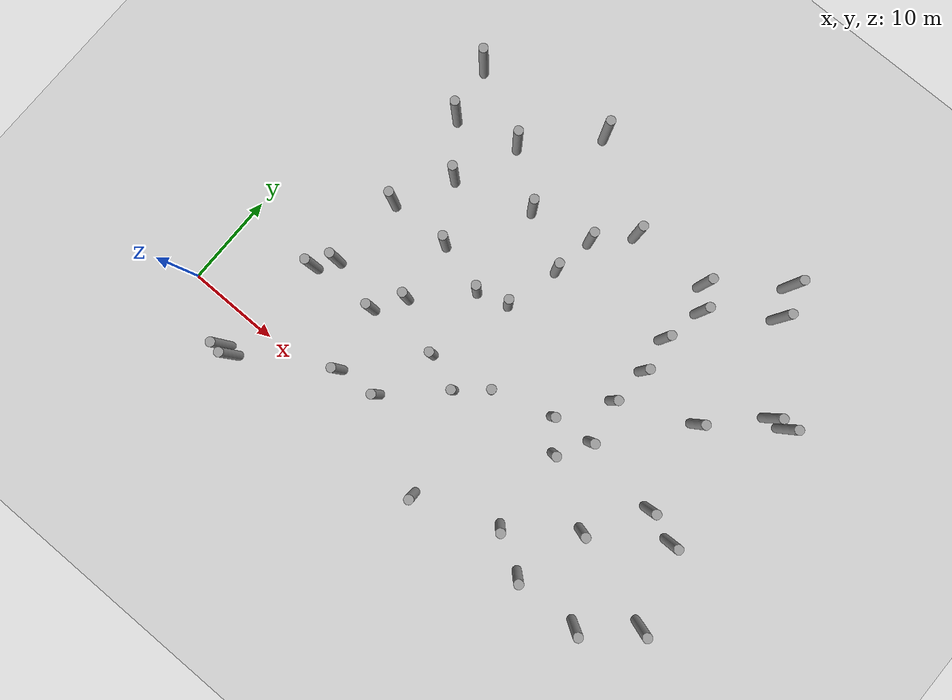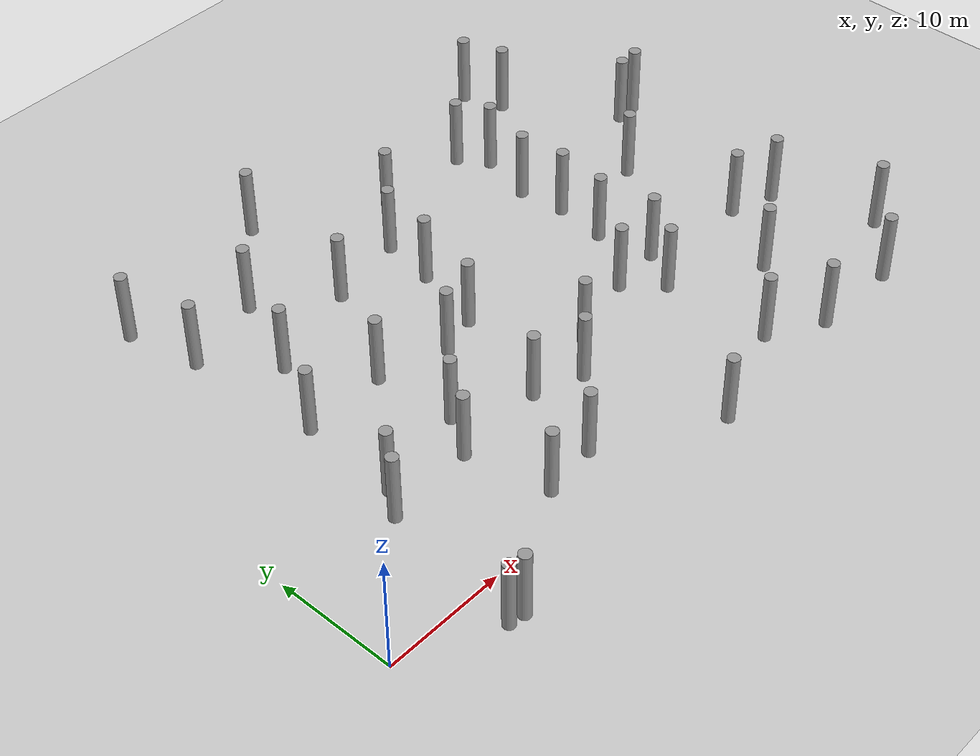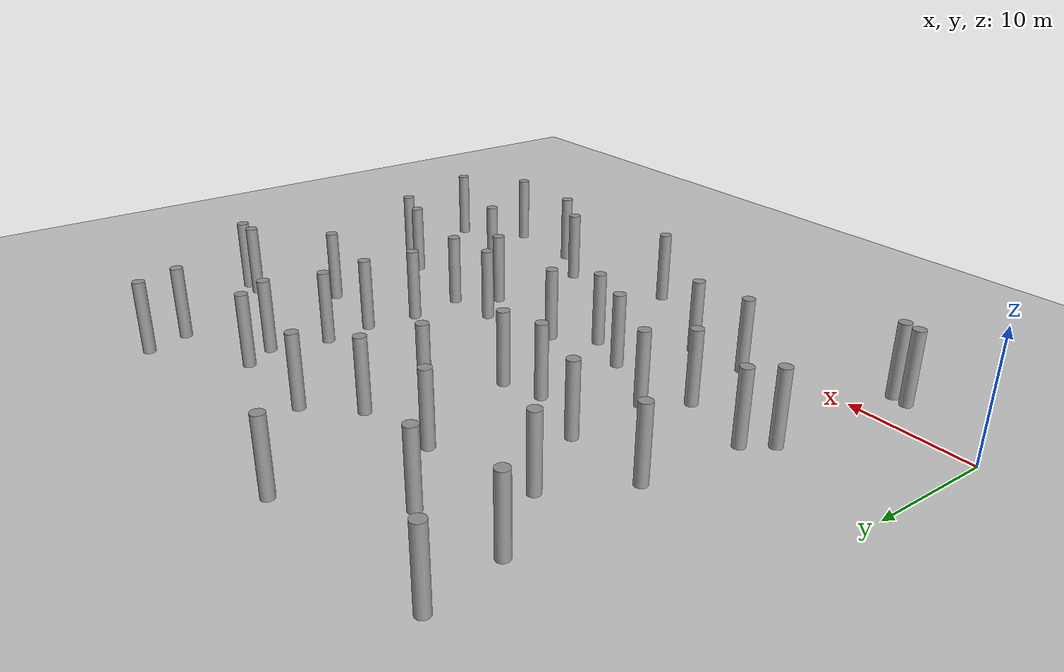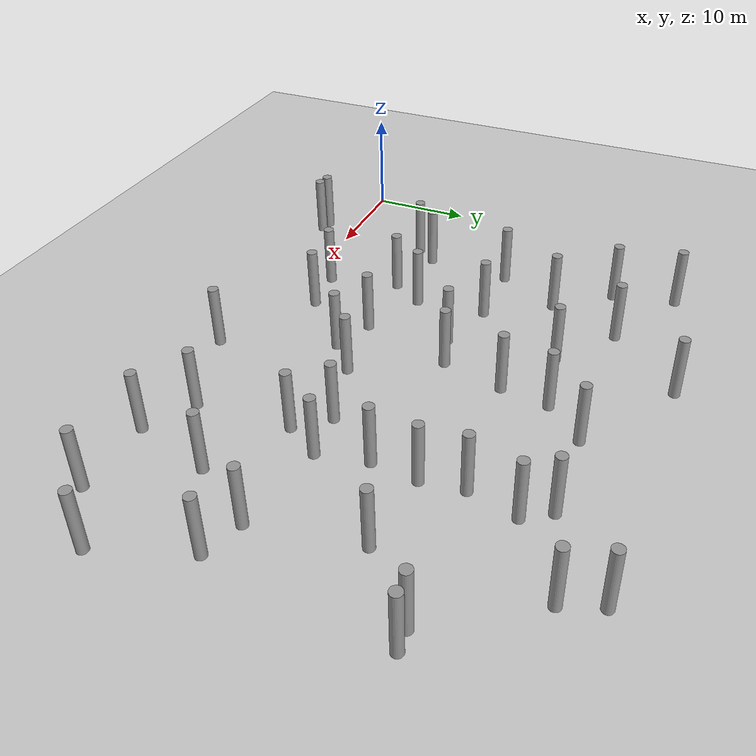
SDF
<sdf version="1.5">
 <world name="circle">
  <model name="ground">
   <static>1</static>
   <link name="link">
    <collision name="collision">
     <geometry><plane><normal>0 0 1</normal><size>100 100</size></plane></geometry>
     <surface><friction><ode><mu>100</mu><mu2>50</mu2></ode></friction></surface>
    </collision>
    <visual name="visual">
     <cast_shadows>0</cast_shadows>
     <geometry><plane><normal>0 0 1</normal><size>100 100</size></plane></geometry>
     <material>
      <script><uri>file://media/materials/scripts/gazebo.material</uri><name>Gazebo/Grey</name></script>
     </material>
    </visual>
    <velocity_decay><linear>0</linear><angular>0</angular></velocity_decay>
   </link>
  </model>
  <model name="unit_cylinder_5">
   <pose>8.83416770659 -3.51580887459 3 3e-06 4e-06 -0</pose>
   <static>1</static>
   <self_collide>1</self_collide>
   <link name="link">
    <inertial>
     <mass>1</mass>
     <inertia><ixx>0.145833</ixx><ixy>0</ixy><ixz>0</ixz><iyy>0.145833</iyy><iyz>0</iyz><izz>0.125</izz></inertia>
    </inertial>
    <collision name="collision">
     <geometry><cylinder><radius>0.5</radius><length>6</length></cylinder></geometry>
    </collision>
    <visual name="visual">
     <geometry><cylinder><radius>0.5</radius><length>6</length></cylinder></geometry>
     <material>
      <script><name>Gazebo/Grey</name><uri>file://media/materials/scripts/gazebo.material</uri></script>
     </material>
    </visual>
    <collision name="cyl_collision">
     <geometry><cylinder><radius>0.5</radius><length>6</length></cylinder></geometry>
    </collision>
    <sensor name="my_contact" type="contact">
     <contact><collision>cyl_collision</collision></contact>
     <update_rate>5</update_rate>
    </sensor>
   </link>
  </model>
  <model name="unit_cylinder_6">
   <pose>7.56302543197 -3.29659652474 3 3e-06 4e-06 -0</pose>
   <static>1</static>
   <self_collide>1</self_collide>
   <link name="link">
    <inertial>
     <mass>1</mass>
     <inertia><ixx>0.145833</ixx><ixy>0</ixy><ixz>0</ixz><iyy>0.145833</iyy><iyz>0</iyz><izz>0.125</izz></inertia>
    </inertial>
    <collision name="collision">
     <geometry><cylinder><radius>0.5</radius><length>6</length></cylinder></geometry>
    </collision>
    <visual name="visual">
     <geometry><cylinder><radius>0.5</radius><length>6</length></cylinder></geometry>
     <material>
      <script><name>Gazebo/Grey</name><uri>file://media/materials/scripts/gazebo.material</uri></script>
     </material>
    </visual>
    <collision name="cyl_collision">
     <geometry><cylinder><radius>0.5</radius><length>6</length></cylinder></geometry>
    </collision>
    <sensor name="my_contact" type="contact">
     <contact><collision>cyl_collision</collision></contact>
     <update_rate>5</update_rate>
    </sensor>
   </link>
  </model>
  <model name="unit_cylinder_7">
   <pose>9.21779882233 8.63194221244 3 3e-06 4e-06 -0</pose>
   <static>1</static>
   <self_collide>1</self_collide>
   <link name="link">
    <inertial>
     <mass>1</mass>
     <inertia><ixx>0.145833</ixx><ixy>0</ixy><ixz>0</ixz><iyy>0.145833</iyy><iyz>0</iyz><izz>0.125</izz></inertia>
    </inertial>
    <collision name="collision">
     <geometry><cylinder><radius>0.5</radius><length>6</length></cylinder></geometry>
    </collision>
    <visual name="visual">
     <geometry><cylinder><radius>0.5</radius><length>6</length></cylinder></geometry>
     <material>
      <script><name>Gazebo/Grey</name><uri>file://media/materials/scripts/gazebo.material</uri></script>
     </material>
    </visual>
    <collision name="cyl_collision">
     <geometry><cylinder><radius>0.5</radius><length>6</length></cylinder></geometry>
    </collision>
    <sensor name="my_contact" type="contact">
     <contact><collision>cyl_collision</collision></contact>
     <update_rate>5</update_rate>
    </sensor>
   </link>
  </model>
  <model name="unit_cylinder_8">
   <pose>10.6660314604 10.6326092408 3 3e-06 4e-06 -0</pose>
   <static>1</static>
   <self_collide>1</self_collide>
   <link name="link">
    <inertial>
     <mass>1</mass>
     <inertia><ixx>0.145833</ixx><ixy>0</ixy><ixz>0</ixz><iyy>0.145833</iyy><iyz>0</iyz><izz>0.125</izz></inertia>
    </inertial>
    <collision name="collision">
     <geometry><cylinder><radius>0.5</radius><length>6</length></cylinder></geometry>
    </collision>
    <visual name="visual">
     <geometry><cylinder><radius>0.5</radius><length>6</length></cylinder></geometry>
     <material>
      <script><name>Gazebo/Grey</name><uri>file://media/materials/scripts/gazebo.material</uri></script>
     </material>
    </visual>
    <collision name="cyl_collision">
     <geometry><cylinder><radius>0.5</radius><length>6</length></cylinder></geometry>
    </collision>
    <sensor name="my_contact" type="contact">
     <contact><collision>cyl_collision</collision></contact>
     <update_rate>5</update_rate>
    </sensor>
   </link>
  </model>
  <model name="unit_cylinder_9">
   <pose>11.123073649 18.9455228863 3 3e-06 4e-06 -0</pose>
   <static>1</static>
   <self_collide>1</self_collide>
   <link name="link">
    <inertial>
     <mass>1</mass>
     <inertia><ixx>0.145833</ixx><ixy>0</ixy><ixz>0</ixz><iyy>0.145833</iyy><iyz>0</iyz><izz>0.125</izz></inertia>
    </inertial>
    <collision name="collision">
     <geometry><cylinder><radius>0.5</radius><length>6</length></cylinder></geometry>
    </collision>
    <visual name="visual">
     <geometry><cylinder><radius>0.5</radius><length>6</length></cylinder></geometry>
     <material>
      <script><name>Gazebo/Grey</name><uri>file://media/materials/scripts/gazebo.material</uri></script>
     </material>
    </visual>
    <collision name="cyl_collision">
     <geometry><cylinder><radius>0.5</radius><length>6</length></cylinder></geometry>
    </collision>
    <sensor name="my_contact" type="contact">
     <contact><collision>cyl_collision</collision></contact>
     <update_rate>5</update_rate>
    </sensor>
   </link>
  </model>
  <model name="unit_cylinder_10">
   <pose>10.1845275033 30.1063696156 3 3e-06 4e-06 -0</pose>
   <static>1</static>
   <self_collide>1</self_collide>
   <link name="link">
    <inertial>
     <mass>1</mass>
     <inertia><ixx>0.145833</ixx><ixy>0</ixy><ixz>0</ixz><iyy>0.145833</iyy><iyz>0</iyz><izz>0.125</izz></inertia>
    </inertial>
    <collision name="collision">
     <geometry><cylinder><radius>0.5</radius><length>6</length></cylinder></geometry>
    </collision>
    <visual name="visual">
     <geometry><cylinder><radius>0.5</radius><length>6</length></cylinder></geometry>
     <material>
      <script><name>Gazebo/Grey</name><uri>file://media/materials/scripts/gazebo.material</uri></script>
     </material>
    </visual>
    <collision name="cyl_collision">
     <geometry><cylinder><radius>0.5</radius><length>6</length></cylinder></geometry>
    </collision>
    <sensor name="my_contact" type="contact">
     <contact><collision>cyl_collision</collision></contact>
     <update_rate>5</update_rate>
    </sensor>
   </link>
  </model>
  <model name="unit_cylinder_11">
   <pose>8.87667534142 36.0706108962 3 3e-06 4e-06 -0</pose>
   <static>1</static>
   <self_collide>1</self_collide>
   <link name="link">
    <inertial>
     <mass>1</mass>
     <inertia><ixx>0.145833</ixx><ixy>0</ixy><ixz>0</ixz><iyy>0.145833</iyy><iyz>0</iyz><izz>0.125</izz></inertia>
    </inertial>
    <collision name="collision">
     <geometry><cylinder><radius>0.5</radius><length>6</length></cylinder></geometry>
    </collision>
    <visual name="visual">
     <geometry><cylinder><radius>0.5</radius><length>6</length></cylinder></geometry>
     <material>
      <script><name>Gazebo/Grey</name><uri>file://media/materials/scripts/gazebo.material</uri></script>
     </material>
    </visual>
    <collision name="cyl_collision">
     <geometry><cylinder><radius>0.5</radius><length>6</length></cylinder></geometry>
    </collision>
    <sensor name="my_contact" type="contact">
     <contact><collision>cyl_collision</collision></contact>
     <update_rate>5</update_rate>
    </sensor>
   </link>
  </model>
  <model name="unit_cylinder_18">
   <pose>18.1074337811 2.3008003105 3 3e-06 4e-06 -0</pose>
   <static>1</static>
   <self_collide>1</self_collide>
   <link name="link">
    <inertial>
     <mass>1</mass>
     <inertia><ixx>0.145833</ixx><ixy>0</ixy><ixz>0</ixz><iyy>0.145833</iyy><iyz>0</iyz><izz>0.125</izz></inertia>
    </inertial>
    <collision name="collision">
     <geometry><cylinder><radius>0.5</radius><length>6</length></cylinder></geometry>
    </collision>
    <visual name="visual">
     <geometry><cylinder><radius>0.5</radius><length>6</length></cylinder></geometry>
     <material>
      <script><name>Gazebo/Grey</name><uri>file://media/materials/scripts/gazebo.material</uri></script>
     </material>
    </visual>
    <collision name="cyl_collision">
     <geometry><cylinder><radius>0.5</radius><length>6</length></cylinder></geometry>
    </collision>
    <sensor name="my_contact" type="contact">
     <contact><collision>cyl_collision</collision></contact>
     <update_rate>5</update_rate>
    </sensor>
   </link>
  </model>
  <model name="unit_cylinder_19">
   <pose>16.6175031208 9.12599399941 3 3e-06 4e-06 -0</pose>
   <static>1</static>
   <self_collide>1</self_collide>
   <link name="link">
    <inertial>
     <mass>1</mass>
     <inertia><ixx>0.145833</ixx><ixy>0</ixy><ixz>0</ixz><iyy>0.145833</iyy><iyz>0</iyz><izz>0.125</izz></inertia>
    </inertial>
    <collision name="collision">
     <geometry><cylinder><radius>0.5</radius><length>6</length></cylinder></geometry>
    </collision>
    <visual name="visual">
     <geometry><cylinder><radius>0.5</radius><length>6</length></cylinder></geometry>
     <material>
      <script><name>Gazebo/Grey</name><uri>file://media/materials/scripts/gazebo.material</uri></script>
     </material>
    </visual>
    <collision name="cyl_collision">
     <geometry><cylinder><radius>0.5</radius><length>6</length></cylinder></geometry>
    </collision>
    <sensor name="my_contact" type="contact">
     <contact><collision>cyl_collision</collision></contact>
     <update_rate>5</update_rate>
    </sensor>
   </link>
  </model>
  <model name="unit_cylinder_20">
   <pose>18.6151554235 12.2272240417 3 3e-06 4e-06 -0</pose>
   <static>1</static>
   <self_collide>1</self_collide>
   <link name="link">
    <inertial>
     <mass>1</mass>
     <inertia><ixx>0.145833</ixx><ixy>0</ixy><ixz>0</ixz><iyy>0.145833</iyy><iyz>0</iyz><izz>0.125</izz></inertia>
    </inertial>
    <collision name="collision">
     <geometry><cylinder><radius>0.5</radius><length>6</length></cylinder></geometry>
    </collision>
    <visual name="visual">
     <geometry><cylinder><radius>0.5</radius><length>6</length></cylinder></geometry>
     <material>
      <script><name>Gazebo/Grey</name><uri>file://media/materials/scripts/gazebo.material</uri></script>
     </material>
    </visual>
    <collision name="cyl_collision">
     <geometry><cylinder><radius>0.5</radius><length>6</length></cylinder></geometry>
    </collision>
    <sensor name="my_contact" type="contact">
     <contact><collision>cyl_collision</collision></contact>
     <update_rate>5</update_rate>
    </sensor>
   </link>
  </model>
  <model name="unit_cylinder_21">
   <pose>18.012515353 19.0028447538 3 3e-06 4e-06 -0</pose>
   <static>1</static>
   <self_collide>1</self_collide>
   <link name="link">
    <inertial>
     <mass>1</mass>
     <inertia><ixx>0.145833</ixx><ixy>0</ixy><ixz>0</ixz><iyy>0.145833</iyy><iyz>0</iyz><izz>0.125</izz></inertia>
    </inertial>
    <collision name="collision">
     <geometry><cylinder><radius>0.5</radius><length>6</length></cylinder></geometry>
    </collision>
    <visual name="visual">
     <geometry><cylinder><radius>0.5</radius><length>6</length></cylinder></geometry>
     <material>
      <script><name>Gazebo/Grey</name><uri>file://media/materials/scripts/gazebo.material</uri></script>
     </material>
    </visual>
    <collision name="cyl_collision">
     <geometry><cylinder><radius>0.5</radius><length>6</length></cylinder></geometry>
    </collision>
    <sensor name="my_contact" type="contact">
     <contact><collision>cyl_collision</collision></contact>
     <update_rate>5</update_rate>
    </sensor>
   </link>
  </model>
  <model name="unit_cylinder_22">
   <pose>14.2315893877 24.9502558088 3 3e-06 4e-06 -0</pose>
   <static>1</static>
   <self_collide>1</self_collide>
   <link name="link">
    <inertial>
     <mass>1</mass>
     <inertia><ixx>0.145833</ixx><ixy>0</ixy><ixz>0</ixz><iyy>0.145833</iyy><iyz>0</iyz><izz>0.125</izz></inertia>
    </inertial>
    <collision name="collision">
     <geometry><cylinder><radius>0.5</radius><length>6</length></cylinder></geometry>
    </collision>
    <visual name="visual">
     <geometry><cylinder><radius>0.5</radius><length>6</length></cylinder></geometry>
     <material>
      <script><name>Gazebo/Grey</name><uri>file://media/materials/scripts/gazebo.material</uri></script>
     </material>
    </visual>
    <collision name="cyl_collision">
     <geometry><cylinder><radius>0.5</radius><length>6</length></cylinder></geometry>
    </collision>
    <sensor name="my_contact" type="contact">
     <contact><collision>cyl_collision</collision></contact>
     <update_rate>5</update_rate>
    </sensor>
   </link>
  </model>
  <model name="unit_cylinder_23">
   <pose>16.9766547562 31.8201238573 3 3e-06 4e-06 -0</pose>
   <static>1</static>
   <self_collide>1</self_collide>
   <link name="link">
    <inertial>
     <mass>1</mass>
     <inertia><ixx>0.145833</ixx><ixy>0</ixy><ixz>0</ixz><iyy>0.145833</iyy><iyz>0</iyz><izz>0.125</izz></inertia>
    </inertial>
    <collision name="collision">
     <geometry><cylinder><radius>0.5</radius><length>6</length></cylinder></geometry>
    </collision>
    <visual name="visual">
     <geometry><cylinder><radius>0.5</radius><length>6</length></cylinder></geometry>
     <material>
      <script><name>Gazebo/Grey</name><uri>file://media/materials/scripts/gazebo.material</uri></script>
     </material>
    </visual>
    <collision name="cyl_collision">
     <geometry><cylinder><radius>0.5</radius><length>6</length></cylinder></geometry>
    </collision>
    <sensor name="my_contact" type="contact">
     <contact><collision>cyl_collision</collision></contact>
     <update_rate>5</update_rate>
    </sensor>
   </link>
  </model>
  <model name="unit_cylinder_30">
   <pose>22.7048124777 2.83400844069 3 3e-06 4e-06 -0</pose>
   <static>1</static>
   <self_collide>1</self_collide>
   <link name="link">
    <inertial>
     <mass>1</mass>
     <inertia><ixx>0.145833</ixx><ixy>0</ixy><ixz>0</ixz><iyy>0.145833</iyy><iyz>0</iyz><izz>0.125</izz></inertia>
    </inertial>
    <collision name="collision">
     <geometry><cylinder><radius>0.5</radius><length>6</length></cylinder></geometry>
    </collision>
    <visual name="visual">
     <geometry><cylinder><radius>0.5</radius><length>6</length></cylinder></geometry>
     <material>
      <script><name>Gazebo/Grey</name><uri>file://media/materials/scripts/gazebo.material</uri></script>
     </material>
    </visual>
    <collision name="cyl_collision">
     <geometry><cylinder><radius>0.5</radius><length>6</length></cylinder></geometry>
    </collision>
    <sensor name="my_contact" type="contact">
     <contact><collision>cyl_collision</collision></contact>
     <update_rate>5</update_rate>
    </sensor>
   </link>
  </model>
  <model name="unit_cylinder_31">
   <pose>24.3456402127 9.49454115345 3 3e-06 4e-06 -0</pose>
   <static>1</static>
   <self_collide>1</self_collide>
   <link name="link">
    <inertial>
     <mass>1</mass>
     <inertia><ixx>0.145833</ixx><ixy>0</ixy><ixz>0</ixz><iyy>0.145833</iyy><iyz>0</iyz><izz>0.125</izz></inertia>
    </inertial>
    <collision name="collision">
     <geometry><cylinder><radius>0.5</radius><length>6</length></cylinder></geometry>
    </collision>
    <visual name="visual">
     <geometry><cylinder><radius>0.5</radius><length>6</length></cylinder></geometry>
     <material>
      <script><name>Gazebo/Grey</name><uri>file://media/materials/scripts/gazebo.material</uri></script>
     </material>
    </visual>
    <collision name="cyl_collision">
     <geometry><cylinder><radius>0.5</radius><length>6</length></cylinder></geometry>
    </collision>
    <sensor name="my_contact" type="contact">
     <contact><collision>cyl_collision</collision></contact>
     <update_rate>5</update_rate>
    </sensor>
   </link>
  </model>
  <model name="unit_cylinder_32">
   <pose>23.6487459374 17.3425965004 3 3e-06 4e-06 -0</pose>
   <static>1</static>
   <self_collide>1</self_collide>
   <link name="link">
    <inertial>
     <mass>1</mass>
     <inertia><ixx>0.145833</ixx><ixy>0</ixy><ixz>0</ixz><iyy>0.145833</iyy><iyz>0</iyz><izz>0.125</izz></inertia>
    </inertial>
    <collision name="collision">
     <geometry><cylinder><radius>0.5</radius><length>6</length></cylinder></geometry>
    </collision>
    <visual name="visual">
     <geometry><cylinder><radius>0.5</radius><length>6</length></cylinder></geometry>
     <material>
      <script><name>Gazebo/Grey</name><uri>file://media/materials/scripts/gazebo.material</uri></script>
     </material>
    </visual>
    <collision name="cyl_collision">
     <geometry><cylinder><radius>0.5</radius><length>6</length></cylinder></geometry>
    </collision>
    <sensor name="my_contact" type="contact">
     <contact><collision>cyl_collision</collision></contact>
     <update_rate>5</update_rate>
    </sensor>
   </link>
  </model>
  <model name="unit_cylinder_33">
   <pose>26.982643623 18.3394458128 3 3e-06 4e-06 -0</pose>
   <static>1</static>
   <self_collide>1</self_collide>
   <link name="link">
    <inertial>
     <mass>1</mass>
     <inertia><ixx>0.145833</ixx><ixy>0</ixy><ixz>0</ixz><iyy>0.145833</iyy><iyz>0</iyz><izz>0.125</izz></inertia>
    </inertial>
    <collision name="collision">
     <geometry><cylinder><radius>0.5</radius><length>6</length></cylinder></geometry>
    </collision>
    <visual name="visual">
     <geometry><cylinder><radius>0.5</radius><length>6</length></cylinder></geometry>
     <material>
      <script><name>Gazebo/Grey</name><uri>file://media/materials/scripts/gazebo.material</uri></script>
     </material>
    </visual>
    <collision name="cyl_collision">
     <geometry><cylinder><radius>0.5</radius><length>6</length></cylinder></geometry>
    </collision>
    <sensor name="my_contact" type="contact">
     <contact><collision>cyl_collision</collision></contact>
     <update_rate>5</update_rate>
    </sensor>
   </link>
  </model>
  <model name="unit_cylinder_34">
   <pose>22.5629372202 27.5258032827 3 3e-06 4e-06 -0</pose>
   <static>1</static>
   <self_collide>1</self_collide>
   <link name="link">
    <inertial>
     <mass>1</mass>
     <inertia><ixx>0.145833</ixx><ixy>0</ixy><ixz>0</ixz><iyy>0.145833</iyy><iyz>0</iyz><izz>0.125</izz></inertia>
    </inertial>
    <collision name="collision">
     <geometry><cylinder><radius>0.5</radius><length>6</length></cylinder></geometry>
    </collision>
    <visual name="visual">
     <geometry><cylinder><radius>0.5</radius><length>6</length></cylinder></geometry>
     <material>
      <script><name>Gazebo/Grey</name><uri>file://media/materials/scripts/gazebo.material</uri></script>
     </material>
    </visual>
    <collision name="cyl_collision">
     <geometry><cylinder><radius>0.5</radius><length>6</length></cylinder></geometry>
    </collision>
    <sensor name="my_contact" type="contact">
     <contact><collision>cyl_collision</collision></contact>
     <update_rate>5</update_rate>
    </sensor>
   </link>
  </model>
  <model name="unit_cylinder_35">
   <pose>23.32483773 38.4749092303 3 3e-06 4e-06 -0</pose>
   <static>1</static>
   <self_collide>1</self_collide>
   <link name="link">
    <inertial>
     <mass>1</mass>
     <inertia><ixx>0.145833</ixx><ixy>0</ixy><ixz>0</ixz><iyy>0.145833</iyy><iyz>0</iyz><izz>0.125</izz></inertia>
    </inertial>
    <collision name="collision">
     <geometry><cylinder><radius>0.5</radius><length>6</length></cylinder></geometry>
    </collision>
    <visual name="visual">
     <geometry><cylinder><radius>0.5</radius><length>6</length></cylinder></geometry>
     <material>
      <script><name>Gazebo/Grey</name><uri>file://media/materials/scripts/gazebo.material</uri></script>
     </material>
    </visual>
    <collision name="cyl_collision">
     <geometry><cylinder><radius>0.5</radius><length>6</length></cylinder></geometry>
    </collision>
    <sensor name="my_contact" type="contact">
     <contact><collision>cyl_collision</collision></contact>
     <update_rate>5</update_rate>
    </sensor>
   </link>
  </model>
  <model name="unit_cylinder_42">
   <pose>31.9394512906 -2.41351626477 3 3e-06 4e-06 -0</pose>
   <static>1</static>
   <self_collide>1</self_collide>
   <link name="link">
    <inertial>
     <mass>1</mass>
     <inertia><ixx>0.145833</ixx><ixy>0</ixy><ixz>0</ixz><iyy>0.145833</iyy><iyz>0</iyz><izz>0.125</izz></inertia>
    </inertial>
    <collision name="collision">
     <geometry><cylinder><radius>0.5</radius><length>6</length></cylinder></geometry>
    </collision>
    <visual name="visual">
     <geometry><cylinder><radius>0.5</radius><length>6</length></cylinder></geometry>
     <material>
      <script><name>Gazebo/Grey</name><uri>file://media/materials/scripts/gazebo.material</uri></script>
     </material>
    </visual>
    <collision name="cyl_collision">
     <geometry><cylinder><radius>0.5</radius><length>6</length></cylinder></geometry>
    </collision>
    <sensor name="my_contact" type="contact">
     <contact><collision>cyl_collision</collision></contact>
     <update_rate>5</update_rate>
    </sensor>
   </link>
  </model>
  <model name="unit_cylinder_43">
   <pose>28.2961669027 8.06749953785 3 3e-06 4e-06 -0</pose>
   <static>1</static>
   <self_collide>1</self_collide>
   <link name="link">
    <inertial>
     <mass>1</mass>
     <inertia><ixx>0.145833</ixx><ixy>0</ixy><ixz>0</ixz><iyy>0.145833</iyy><iyz>0</iyz><izz>0.125</izz></inertia>
    </inertial>
    <collision name="collision">
     <geometry><cylinder><radius>0.5</radius><length>6</length></cylinder></geometry>
    </collision>
    <visual name="visual">
     <geometry><cylinder><radius>0.5</radius><length>6</length></cylinder></geometry>
     <material>
      <script><name>Gazebo/Grey</name><uri>file://media/materials/scripts/gazebo.material</uri></script>
     </material>
    </visual>
    <collision name="cyl_collision">
     <geometry><cylinder><radius>0.5</radius><length>6</length></cylinder></geometry>
    </collision>
    <sensor name="my_contact" type="contact">
     <contact><collision>cyl_collision</collision></contact>
     <update_rate>5</update_rate>
    </sensor>
   </link>
  </model>
  <model name="unit_cylinder_44">
   <pose>31.2671998302 10.5975532691 3 3e-06 4e-06 -0</pose>
   <static>1</static>
   <self_collide>1</self_collide>
   <link name="link">
    <inertial>
     <mass>1</mass>
     <inertia><ixx>0.145833</ixx><ixy>0</ixy><ixz>0</ixz><iyy>0.145833</iyy><iyz>0</iyz><izz>0.125</izz></inertia>
    </inertial>
    <collision name="collision">
     <geometry><cylinder><radius>0.5</radius><length>6</length></cylinder></geometry>
    </collision>
    <visual name="visual">
     <geometry><cylinder><radius>0.5</radius><length>6</length></cylinder></geometry>
     <material>
      <script><name>Gazebo/Grey</name><uri>file://media/materials/scripts/gazebo.material</uri></script>
     </material>
    </visual>
    <collision name="cyl_collision">
     <geometry><cylinder><radius>0.5</radius><length>6</length></cylinder></geometry>
    </collision>
    <sensor name="my_contact" type="contact">
     <contact><collision>cyl_collision</collision></contact>
     <update_rate>5</update_rate>
    </sensor>
   </link>
  </model>
  <model name="unit_cylinder_45">
   <pose>28.483780144 24.2244516977 3 3e-06 4e-06 -0</pose>
   <static>1</static>
   <self_collide>1</self_collide>
   <link name="link">
    <inertial>
     <mass>1</mass>
     <inertia><ixx>0.145833</ixx><ixy>0</ixy><ixz>0</ixz><iyy>0.145833</iyy><iyz>0</iyz><izz>0.125</izz></inertia>
    </inertial>
    <collision name="collision">
     <geometry><cylinder><radius>0.5</radius><length>6</length></cylinder></geometry>
    </collision>
    <visual name="visual">
     <geometry><cylinder><radius>0.5</radius><length>6</length></cylinder></geometry>
     <material>
      <script><name>Gazebo/Grey</name><uri>file://media/materials/scripts/gazebo.material</uri></script>
     </material>
    </visual>
    <collision name="cyl_collision">
     <geometry><cylinder><radius>0.5</radius><length>6</length></cylinder></geometry>
    </collision>
    <sensor name="my_contact" type="contact">
     <contact><collision>cyl_collision</collision></contact>
     <update_rate>5</update_rate>
    </sensor>
   </link>
  </model>
  <model name="unit_cylinder_46">
   <pose>29.1691113375 28.770315287 3 3e-06 4e-06 -0</pose>
   <static>1</static>
   <self_collide>1</self_collide>
   <link name="link">
    <inertial>
     <mass>1</mass>
     <inertia><ixx>0.145833</ixx><ixy>0</ixy><ixz>0</ixz><iyy>0.145833</iyy><iyz>0</iyz><izz>0.125</izz></inertia>
    </inertial>
    <collision name="collision">
     <geometry><cylinder><radius>0.5</radius><length>6</length></cylinder></geometry>
    </collision>
    <visual name="visual">
     <geometry><cylinder><radius>0.5</radius><length>6</length></cylinder></geometry>
     <material>
      <script><name>Gazebo/Grey</name><uri>file://media/materials/scripts/gazebo.material</uri></script>
     </material>
    </visual>
    <collision name="cyl_collision">
     <geometry><cylinder><radius>0.5</radius><length>6</length></cylinder></geometry>
    </collision>
    <sensor name="my_contact" type="contact">
     <contact><collision>cyl_collision</collision></contact>
     <update_rate>5</update_rate>
    </sensor>
   </link>
  </model>
  <model name="unit_cylinder_47">
   <pose>32.448815474 32.3084010051 3 3e-06 4e-06 -0</pose>
   <static>1</static>
   <self_collide>1</self_collide>
   <link name="link">
    <inertial>
     <mass>1</mass>
     <inertia><ixx>0.145833</ixx><ixy>0</ixy><ixz>0</ixz><iyy>0.145833</iyy><iyz>0</iyz><izz>0.125</izz></inertia>
    </inertial>
    <collision name="collision">
     <geometry><cylinder><radius>0.5</radius><length>6</length></cylinder></geometry>
    </collision>
    <visual name="visual">
     <geometry><cylinder><radius>0.5</radius><length>6</length></cylinder></geometry>
     <material>
      <script><name>Gazebo/Grey</name><uri>file://media/materials/scripts/gazebo.material</uri></script>
     </material>
    </visual>
    <collision name="cyl_collision">
     <geometry><cylinder><radius>0.5</radius><length>6</length></cylinder></geometry>
    </collision>
    <sensor name="my_contact" type="contact">
     <contact><collision>cyl_collision</collision></contact>
     <update_rate>5</update_rate>
    </sensor>
   </link>
  </model>
  <model name="unit_cylinder_54">
   <pose>40.6063096722 0.771646943641 3 3e-06 4e-06 -0</pose>
   <static>1</static>
   <self_collide>1</self_collide>
   <link name="link">
    <inertial>
     <mass>1</mass>
     <inertia><ixx>0.145833</ixx><ixy>0</ixy><ixz>0</ixz><iyy>0.145833</iyy><iyz>0</iyz><izz>0.125</izz></inertia>
    </inertial>
    <collision name="collision">
     <geometry><cylinder><radius>0.5</radius><length>6</length></cylinder></geometry>
    </collision>
    <visual name="visual">
     <geometry><cylinder><radius>0.5</radius><length>6</length></cylinder></geometry>
     <material>
      <script><name>Gazebo/Grey</name><uri>file://media/materials/scripts/gazebo.material</uri></script>
     </material>
    </visual>
    <collision name="cyl_collision">
     <geometry><cylinder><radius>0.5</radius><length>6</length></cylinder></geometry>
    </collision>
    <sensor name="my_contact" type="contact">
     <contact><collision>cyl_collision</collision></contact>
     <update_rate>5</update_rate>
    </sensor>
   </link>
  </model>
  <model name="unit_cylinder_55">
   <pose>40.1062640561 9.66793157525 3 3e-06 4e-06 -0</pose>
   <static>1</static>
   <self_collide>1</self_collide>
   <link name="link">
    <inertial>
     <mass>1</mass>
     <inertia><ixx>0.145833</ixx><ixy>0</ixy><ixz>0</ixz><iyy>0.145833</iyy><iyz>0</iyz><izz>0.125</izz></inertia>
    </inertial>
    <collision name="collision">
     <geometry><cylinder><radius>0.5</radius><length>6</length></cylinder></geometry>
    </collision>
    <visual name="visual">
     <geometry><cylinder><radius>0.5</radius><length>6</length></cylinder></geometry>
     <material>
      <script><name>Gazebo/Grey</name><uri>file://media/materials/scripts/gazebo.material</uri></script>
     </material>
    </visual>
    <collision name="cyl_collision">
     <geometry><cylinder><radius>0.5</radius><length>6</length></cylinder></geometry>
    </collision>
    <sensor name="my_contact" type="contact">
     <contact><collision>cyl_collision</collision></contact>
     <update_rate>5</update_rate>
    </sensor>
   </link>
  </model>
  <model name="unit_cylinder_56">
   <pose>37.6888003922 12.4777077231 3 3e-06 4e-06 -0</pose>
   <static>1</static>
   <self_collide>1</self_collide>
   <link name="link">
    <inertial>
     <mass>1</mass>
     <inertia><ixx>0.145833</ixx><ixy>0</ixy><ixz>0</ixz><iyy>0.145833</iyy><iyz>0</iyz><izz>0.125</izz></inertia>
    </inertial>
    <collision name="collision">
     <geometry><cylinder><radius>0.5</radius><length>6</length></cylinder></geometry>
    </collision>
    <visual name="visual">
     <geometry><cylinder><radius>0.5</radius><length>6</length></cylinder></geometry>
     <material>
      <script><name>Gazebo/Grey</name><uri>file://media/materials/scripts/gazebo.material</uri></script>
     </material>
    </visual>
    <collision name="cyl_collision">
     <geometry><cylinder><radius>0.5</radius><length>6</length></cylinder></geometry>
    </collision>
    <sensor name="my_contact" type="contact">
     <contact><collision>cyl_collision</collision></contact>
     <update_rate>5</update_rate>
    </sensor>
   </link>
  </model>
  <model name="unit_cylinder_57">
   <pose>41.2859097031 17.5839858984 3 3e-06 4e-06 -0</pose>
   <static>1</static>
   <self_collide>1</self_collide>
   <link name="link">
    <inertial>
     <mass>1</mass>
     <inertia><ixx>0.145833</ixx><ixy>0</ixy><ixz>0</ixz><iyy>0.145833</iyy><iyz>0</iyz><izz>0.125</izz></inertia>
    </inertial>
    <collision name="collision">
     <geometry><cylinder><radius>0.5</radius><length>6</length></cylinder></geometry>
    </collision>
    <visual name="visual">
     <geometry><cylinder><radius>0.5</radius><length>6</length></cylinder></geometry>
     <material>
      <script><name>Gazebo/Grey</name><uri>file://media/materials/scripts/gazebo.material</uri></script>
     </material>
    </visual>
    <collision name="cyl_collision">
     <geometry><cylinder><radius>0.5</radius><length>6</length></cylinder></geometry>
    </collision>
    <sensor name="my_contact" type="contact">
     <contact><collision>cyl_collision</collision></contact>
     <update_rate>5</update_rate>
    </sensor>
   </link>
  </model>
  <model name="unit_cylinder_58">
   <pose>41.2668159355 25.7203582716 3 3e-06 4e-06 -0</pose>
   <static>1</static>
   <self_collide>1</self_collide>
   <link name="link">
    <inertial>
     <mass>1</mass>
     <inertia><ixx>0.145833</ixx><ixy>0</ixy><ixz>0</ixz><iyy>0.145833</iyy><iyz>0</iyz><izz>0.125</izz></inertia>
    </inertial>
    <collision name="collision">
     <geometry><cylinder><radius>0.5</radius><length>6</length></cylinder></geometry>
    </collision>
    <visual name="visual">
     <geometry><cylinder><radius>0.5</radius><length>6</length></cylinder></geometry>
     <material>
      <script><name>Gazebo/Grey</name><uri>file://media/materials/scripts/gazebo.material</uri></script>
     </material>
    </visual>
    <collision name="cyl_collision">
     <geometry><cylinder><radius>0.5</radius><length>6</length></cylinder></geometry>
    </collision>
    <sensor name="my_contact" type="contact">
     <contact><collision>cyl_collision</collision></contact>
     <update_rate>5</update_rate>
    </sensor>
   </link>
  </model>
  <model name="unit_cylinder_59">
   <pose>40.8961990471 32.6171346375 3 3e-06 4e-06 -0</pose>
   <static>1</static>
   <self_collide>1</self_collide>
   <link name="link">
    <inertial>
     <mass>1</mass>
     <inertia><ixx>0.145833</ixx><ixy>0</ixy><ixz>0</ixz><iyy>0.145833</iyy><iyz>0</iyz><izz>0.125</izz></inertia>
    </inertial>
    <collision name="collision">
     <geometry><cylinder><radius>0.5</radius><length>6</length></cylinder></geometry>
    </collision>
    <visual name="visual">
     <geometry><cylinder><radius>0.5</radius><length>6</length></cylinder></geometry>
     <material>
      <script><name>Gazebo/Grey</name><uri>file://media/materials/scripts/gazebo.material</uri></script>
     </material>
    </visual>
    <collision name="cyl_collision">
     <geometry><cylinder><radius>0.5</radius><length>6</length></cylinder></geometry>
    </collision>
    <sensor name="my_contact" type="contact">
     <contact><collision>cyl_collision</collision></contact>
     <update_rate>5</update_rate>
    </sensor>
   </link>
  </model>
  <model name="unit_cylinder_66">
   <pose>44.9197214891 -1.74256208292 3 3e-06 4e-06 -0</pose>
   <static>1</static>
   <self_collide>1</self_collide>
   <link name="link">
    <inertial>
     <mass>1</mass>
     <inertia><ixx>0.145833</ixx><ixy>0</ixy><ixz>0</ixz><iyy>0.145833</iyy><iyz>0</iyz><izz>0.125</izz></inertia>
    </inertial>
    <collision name="collision">
     <geometry><cylinder><radius>0.5</radius><length>6</length></cylinder></geometry>
    </collision>
    <visual name="visual">
     <geometry><cylinder><radius>0.5</radius><length>6</length></cylinder></geometry>
     <material>
      <script><name>Gazebo/Grey</name><uri>file://media/materials/scripts/gazebo.material</uri></script>
     </material>
    </visual>
    <collision name="cyl_collision">
     <geometry><cylinder><radius>0.5</radius><length>6</length></cylinder></geometry>
    </collision>
    <sensor name="my_contact" type="contact">
     <contact><collision>cyl_collision</collision></contact>
     <update_rate>5</update_rate>
    </sensor>
   </link>
  </model>
  <model name="unit_cylinder_67">
   <pose>47.0342096891 5.60546377187 3 3e-06 4e-06 -0</pose>
   <static>1</static>
   <self_collide>1</self_collide>
   <link name="link">
    <inertial>
     <mass>1</mass>
     <inertia><ixx>0.145833</ixx><ixy>0</ixy><ixz>0</ixz><iyy>0.145833</iyy><iyz>0</iyz><izz>0.125</izz></inertia>
    </inertial>
    <collision name="collision">
     <geometry><cylinder><radius>0.5</radius><length>6</length></cylinder></geometry>
    </collision>
    <visual name="visual">
     <geometry><cylinder><radius>0.5</radius><length>6</length></cylinder></geometry>
     <material>
      <script><name>Gazebo/Grey</name><uri>file://media/materials/scripts/gazebo.material</uri></script>
     </material>
    </visual>
    <collision name="cyl_collision">
     <geometry><cylinder><radius>0.5</radius><length>6</length></cylinder></geometry>
    </collision>
    <sensor name="my_contact" type="contact">
     <contact><collision>cyl_collision</collision></contact>
     <update_rate>5</update_rate>
    </sensor>
   </link>
  </model>
  <model name="unit_cylinder_68">
   <pose>42.1555837049 12.9474328069 3 3e-06 4e-06 -0</pose>
   <static>1</static>
   <self_collide>1</self_collide>
   <link name="link">
    <inertial>
     <mass>1</mass>
     <inertia><ixx>0.145833</ixx><ixy>0</ixy><ixz>0</ixz><iyy>0.145833</iyy><iyz>0</iyz><izz>0.125</izz></inertia>
    </inertial>
    <collision name="collision">
     <geometry><cylinder><radius>0.5</radius><length>6</length></cylinder></geometry>
    </collision>
    <visual name="visual">
     <geometry><cylinder><radius>0.5</radius><length>6</length></cylinder></geometry>
     <material>
      <script><name>Gazebo/Grey</name><uri>file://media/materials/scripts/gazebo.material</uri></script>
     </material>
    </visual>
    <collision name="cyl_collision">
     <geometry><cylinder><radius>0.5</radius><length>6</length></cylinder></geometry>
    </collision>
    <sensor name="my_contact" type="contact">
     <contact><collision>cyl_collision</collision></contact>
     <update_rate>5</update_rate>
    </sensor>
   </link>
  </model>
  <model name="unit_cylinder_69">
   <pose>41.7216422982 21.8516951436 3 3e-06 4e-06 -0</pose>
   <static>1</static>
   <self_collide>1</self_collide>
   <link name="link">
    <inertial>
     <mass>1</mass>
     <inertia><ixx>0.145833</ixx><ixy>0</ixy><ixz>0</ixz><iyy>0.145833</iyy><iyz>0</iyz><izz>0.125</izz></inertia>
    </inertial>
    <collision name="collision">
     <geometry><cylinder><radius>0.5</radius><length>6</length></cylinder></geometry>
    </collision>
    <visual name="visual">
     <geometry><cylinder><radius>0.5</radius><length>6</length></cylinder></geometry>
     <material>
      <script><name>Gazebo/Grey</name><uri>file://media/materials/scripts/gazebo.material</uri></script>
     </material>
    </visual>
    <collision name="cyl_collision">
     <geometry><cylinder><radius>0.5</radius><length>6</length></cylinder></geometry>
    </collision>
    <sensor name="my_contact" type="contact">
     <contact><collision>cyl_collision</collision></contact>
     <update_rate>5</update_rate>
    </sensor>
   </link>
  </model>
  <model name="unit_cylinder_70">
   <pose>42.4208545385 30.2398321597 3 3e-06 4e-06 -0</pose>
   <static>1</static>
   <self_collide>1</self_collide>
   <link name="link">
    <inertial>
     <mass>1</mass>
     <inertia><ixx>0.145833</ixx><ixy>0</ixy><ixz>0</ixz><iyy>0.145833</iyy><iyz>0</iyz><izz>0.125</izz></inertia>
    </inertial>
    <collision name="collision">
     <geometry><cylinder><radius>0.5</radius><length>6</length></cylinder></geometry>
    </collision>
    <visual name="visual">
     <geometry><cylinder><radius>0.5</radius><length>6</length></cylinder></geometry>
     <material>
      <script><name>Gazebo/Grey</name><uri>file://media/materials/scripts/gazebo.material</uri></script>
     </material>
    </visual>
    <collision name="cyl_collision">
     <geometry><cylinder><radius>0.5</radius><length>6</length></cylinder></geometry>
    </collision>
    <sensor name="my_contact" type="contact">
     <contact><collision>cyl_collision</collision></contact>
     <update_rate>5</update_rate>
    </sensor>
   </link>
  </model>
  <model name="unit_cylinder_71">
   <pose>47.7926249251 38.1888885827 3 3e-06 4e-06 -0</pose>
   <static>1</static>
   <self_collide>1</self_collide>
   <link name="link">
    <inertial>
     <mass>1</mass>
     <inertia><ixx>0.145833</ixx><ixy>0</ixy><ixz>0</ixz><iyy>0.145833</iyy><iyz>0</iyz><izz>0.125</izz></inertia>
    </inertial>
    <collision name="collision">
     <geometry><cylinder><radius>0.5</radius><length>6</length></cylinder></geometry>
    </collision>
    <visual name="visual">
     <geometry><cylinder><radius>0.5</radius><length>6</length></cylinder></geometry>
     <material>
      <script><name>Gazebo/Grey</name><uri>file://media/materials/scripts/gazebo.material</uri></script>
     </material>
    </visual>
    <collision name="cyl_collision">
     <geometry><cylinder><radius>0.5</radius><length>6</length></cylinder></geometry>
    </collision>
    <sensor name="my_contact" type="contact">
     <contact><collision>cyl_collision</collision></contact>
     <update_rate>5</update_rate>
    </sensor>
   </link>
  </model>
  <model name="unit_cylinder_78">
   <pose>52.2472741352 -1.90291229752 3 3e-06 4e-06 -0</pose>
   <static>1</static>
   <self_collide>1</self_collide>
   <link name="link">
    <inertial>
     <mass>1</mass>
     <inertia><ixx>0.145833</ixx><ixy>0</ixy><ixz>0</ixz><iyy>0.145833</iyy><iyz>0</iyz><izz>0.125</izz></inertia>
    </inertial>
    <collision name="collision">
     <geometry><cylinder><radius>0.5</radius><length>6</length></cylinder></geometry>
    </collision>
    <visual name="visual">
     <geometry><cylinder><radius>0.5</radius><length>6</length></cylinder></geometry>
     <material>
      <script><name>Gazebo/Grey</name><uri>file://media/materials/scripts/gazebo.material</uri></script>
     </material>
    </visual>
    <collision name="cyl_collision">
     <geometry><cylinder><radius>0.5</radius><length>6</length></cylinder></geometry>
    </collision>
    <sensor name="my_contact" type="contact">
     <contact><collision>cyl_collision</collision></contact>
     <update_rate>5</update_rate>
    </sensor>
   </link>
  </model>
  <model name="unit_cylinder_79">
   <pose>54.41746715 10.3542811814 3 3e-06 4e-06 -0</pose>
   <static>1</static>
   <self_collide>1</self_collide>
   <link name="link">
    <inertial>
     <mass>1</mass>
     <inertia><ixx>0.145833</ixx><ixy>0</ixy><ixz>0</ixz><iyy>0.145833</iyy><iyz>0</iyz><izz>0.125</izz></inertia>
    </inertial>
    <collision name="collision">
     <geometry><cylinder><radius>0.5</radius><length>6</length></cylinder></geometry>
    </collision>
    <visual name="visual">
     <geometry><cylinder><radius>0.5</radius><length>6</length></cylinder></geometry>
     <material>
      <script><name>Gazebo/Grey</name><uri>file://media/materials/scripts/gazebo.material</uri></script>
     </material>
    </visual>
    <collision name="cyl_collision">
     <geometry><cylinder><radius>0.5</radius><length>6</length></cylinder></geometry>
    </collision>
    <sensor name="my_contact" type="contact">
     <contact><collision>cyl_collision</collision></contact>
     <update_rate>5</update_rate>
    </sensor>
   </link>
  </model>
  <model name="unit_cylinder_80">
   <pose>50.8006426027 11.5506911034 3 3e-06 4e-06 -0</pose>
   <static>1</static>
   <self_collide>1</self_collide>
   <link name="link">
    <inertial>
     <mass>1</mass>
     <inertia><ixx>0.145833</ixx><ixy>0</ixy><ixz>0</ixz><iyy>0.145833</iyy><iyz>0</iyz><izz>0.125</izz></inertia>
    </inertial>
    <collision name="collision">
     <geometry><cylinder><radius>0.5</radius><length>6</length></cylinder></geometry>
    </collision>
    <visual name="visual">
     <geometry><cylinder><radius>0.5</radius><length>6</length></cylinder></geometry>
     <material>
      <script><name>Gazebo/Grey</name><uri>file://media/materials/scripts/gazebo.material</uri></script>
     </material>
    </visual>
    <collision name="cyl_collision">
     <geometry><cylinder><radius>0.5</radius><length>6</length></cylinder></geometry>
    </collision>
    <sensor name="my_contact" type="contact">
     <contact><collision>cyl_collision</collision></contact>
     <update_rate>5</update_rate>
    </sensor>
   </link>
  </model>
  <model name="unit_cylinder_81">
   <pose>49.1573555989 21.1240265731 3 3e-06 4e-06 -0</pose>
   <static>1</static>
   <self_collide>1</self_collide>
   <link name="link">
    <inertial>
     <mass>1</mass>
     <inertia><ixx>0.145833</ixx><ixy>0</ixy><ixz>0</ixz><iyy>0.145833</iyy><iyz>0</iyz><izz>0.125</izz></inertia>
    </inertial>
    <collision name="collision">
     <geometry><cylinder><radius>0.5</radius><length>6</length></cylinder></geometry>
    </collision>
    <visual name="visual">
     <geometry><cylinder><radius>0.5</radius><length>6</length></cylinder></geometry>
     <material>
      <script><name>Gazebo/Grey</name><uri>file://media/materials/scripts/gazebo.material</uri></script>
     </material>
    </visual>
    <collision name="cyl_collision">
     <geometry><cylinder><radius>0.5</radius><length>6</length></cylinder></geometry>
    </collision>
    <sensor name="my_contact" type="contact">
     <contact><collision>cyl_collision</collision></contact>
     <update_rate>5</update_rate>
    </sensor>
   </link>
  </model>
  <model name="unit_cylinder_82">
   <pose>54.4836979673 26.3422006034 3 3e-06 4e-06 -0</pose>
   <static>1</static>
   <self_collide>1</self_collide>
   <link name="link">
    <inertial>
     <mass>1</mass>
     <inertia><ixx>0.145833</ixx><ixy>0</ixy><ixz>0</ixz><iyy>0.145833</iyy><iyz>0</iyz><izz>0.125</izz></inertia>
    </inertial>
    <collision name="collision">
     <geometry><cylinder><radius>0.5</radius><length>6</length></cylinder></geometry>
    </collision>
    <visual name="visual">
     <geometry><cylinder><radius>0.5</radius><length>6</length></cylinder></geometry>
     <material>
      <script><name>Gazebo/Grey</name><uri>file://media/materials/scripts/gazebo.material</uri></script>
     </material>
    </visual>
    <collision name="cyl_collision">
     <geometry><cylinder><radius>0.5</radius><length>6</length></cylinder></geometry>
    </collision>
    <sensor name="my_contact" type="contact">
     <contact><collision>cyl_collision</collision></contact>
     <update_rate>5</update_rate>
    </sensor>
   </link>
  </model>
  <model name="unit_cylinder_83">
   <pose>48.9475786809 34.8499616197 3 3e-06 4e-06 -0</pose>
   <static>1</static>
   <self_collide>1</self_collide>
   <link name="link">
    <inertial>
     <mass>1</mass>
     <inertia><ixx>0.145833</ixx><ixy>0</ixy><ixz>0</ixz><iyy>0.145833</iyy><iyz>0</iyz><izz>0.125</izz></inertia>
    </inertial>
    <collision name="collision">
     <geometry><cylinder><radius>0.5</radius><length>6</length></cylinder></geometry>
    </collision>
    <visual name="visual">
     <geometry><cylinder><radius>0.5</radius><length>6</length></cylinder></geometry>
     <material>
      <script><name>Gazebo/Grey</name><uri>file://media/materials/scripts/gazebo.material</uri></script>
     </material>
    </visual>
    <collision name="cyl_collision">
     <geometry><cylinder><radius>0.5</radius><length>6</length></cylinder></geometry>
    </collision>
    <sensor name="my_contact" type="contact">
     <contact><collision>cyl_collision</collision></contact>
     <update_rate>5</update_rate>
    </sensor>
   </link>
  </model>
  <model name="unit_cylinder_90">
   <pose>57.2317556368 2.20235886003 3 3e-06 4e-06 -0</pose>
   <static>1</static>
   <self_collide>1</self_collide>
   <link name="link">
    <inertial>
     <mass>1</mass>
     <inertia><ixx>0.145833</ixx><ixy>0</ixy><ixz>0</ixz><iyy>0.145833</iyy><iyz>0</iyz><izz>0.125</izz></inertia>
    </inertial>
    <collision name="collision">
     <geometry><cylinder><radius>0.5</radius><length>6</length></cylinder></geometry>
    </collision>
    <visual name="visual">
     <geometry><cylinder><radius>0.5</radius><length>6</length></cylinder></geometry>
     <material>
      <script><name>Gazebo/Grey</name><uri>file://media/materials/scripts/gazebo.material</uri></script>
     </material>
    </visual>
    <collision name="cyl_collision">
     <geometry><cylinder><radius>0.5</radius><length>6</length></cylinder></geometry>
    </collision>
    <sensor name="my_contact" type="contact">
     <contact><collision>cyl_collision</collision></contact>
     <update_rate>5</update_rate>
    </sensor>
   </link>
  </model>
  <model name="unit_cylinder_94">
   <pose>56.2720369468 26.4477741 3 3e-06 4e-06 -0</pose>
   <static>1</static>
   <self_collide>1</self_collide>
   <link name="link">
    <inertial>
     <mass>1</mass>
     <inertia><ixx>0.145833</ixx><ixy>0</ixy><ixz>0</ixz><iyy>0.145833</iyy><iyz>0</iyz><izz>0.125</izz></inertia>
    </inertial>
    <collision name="collision">
     <geometry><cylinder><radius>0.5</radius><length>6</length></cylinder></geometry>
    </collision>
    <visual name="visual">
     <geometry><cylinder><radius>0.5</radius><length>6</length></cylinder></geometry>
     <material>
      <script><name>Gazebo/Grey</name><uri>file://media/materials/scripts/gazebo.material</uri></script>
     </material>
    </visual>
    <collision name="cyl_collision">
     <geometry><cylinder><radius>0.5</radius><length>6</length></cylinder></geometry>
    </collision>
    <sensor name="my_contact" type="contact">
     <contact><collision>cyl_collision</collision></contact>
     <update_rate>5</update_rate>
    </sensor>
   </link>
  </model>
 </world>
</sdf>
